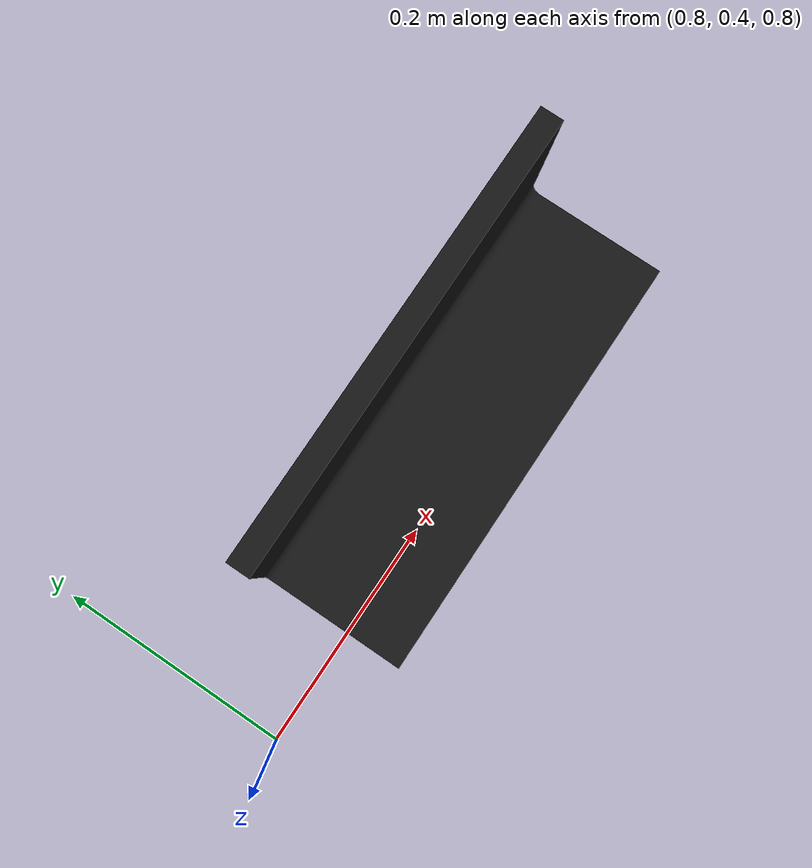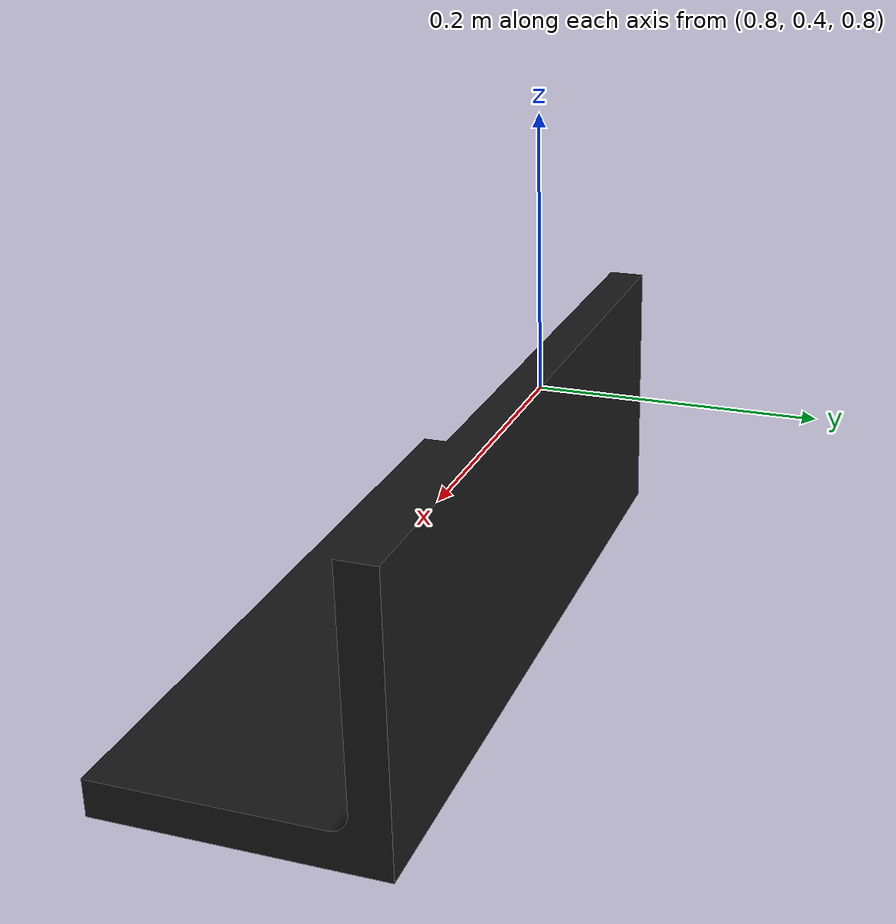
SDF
<?xml version="1.0" ?>
<sdf version="1.6">
  <model name="weld_part_test">

    <static>true</static>
    <pose>1.1 0.5 0.774 0 0 0</pose>

    <link name="weld_part_test_link">

      <visual name="visual">
        <geometry>
          <mesh>
            <uri>model://weld_part_test/meshes/weld_part_test.STL</uri>
          </mesh>
        </geometry>
        <material>
          <ambient>0.1 0.1 0.1 1.0</ambient>
          <diffuse>0.1 0.1 0.1 1.0</diffuse>
          <specular>1.0 1.0 1.0 1.0</specular>
        </material>
      </visual>

      <collision name="collision">
        <geometry>
          <mesh>
            <uri>model://weld_part_test/meshes/weld_part_test.STL</uri>
          </mesh>
        </geometry>
      </collision>

    </link>

  </model>
</sdf>
